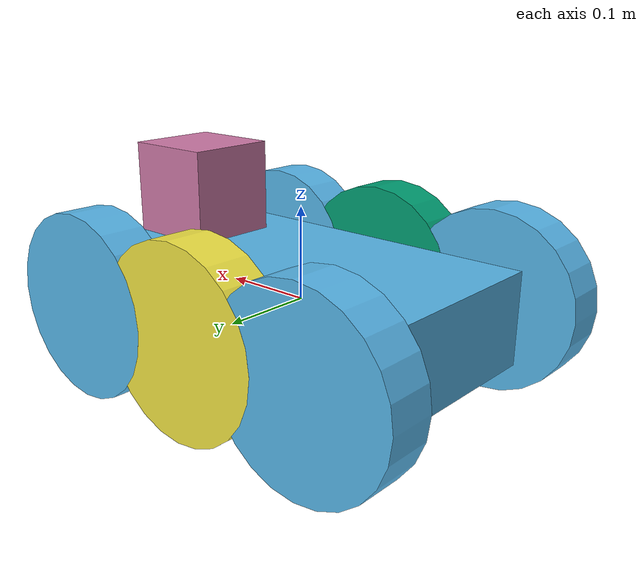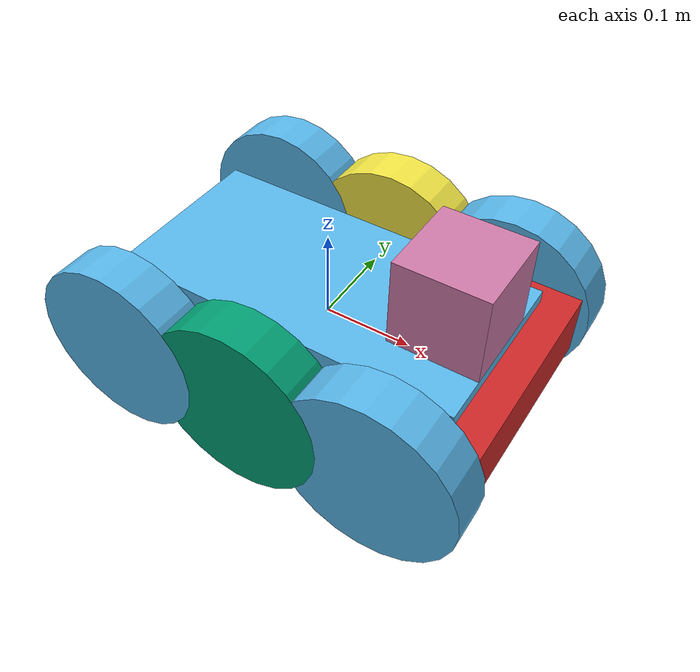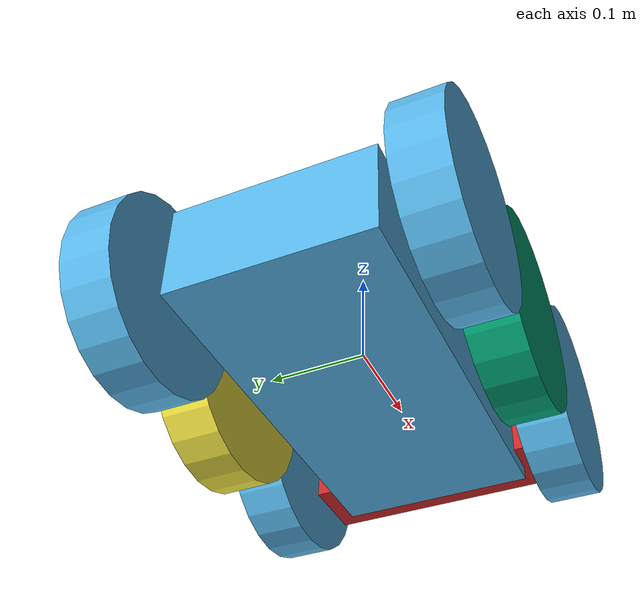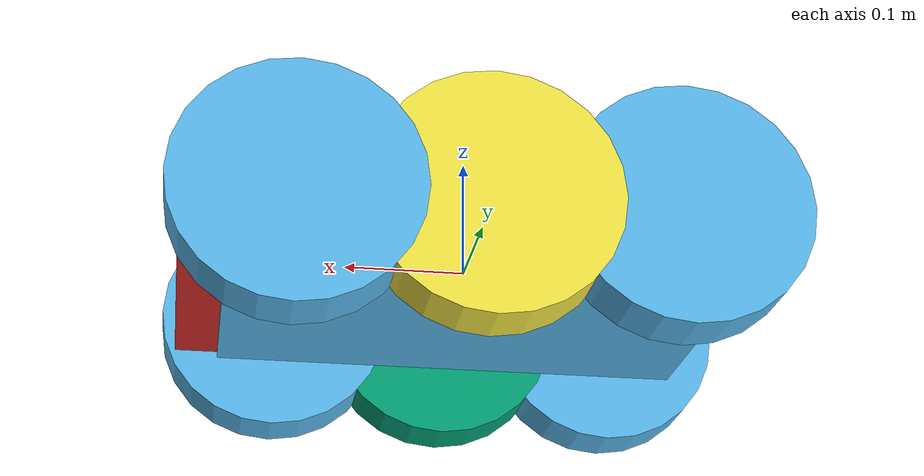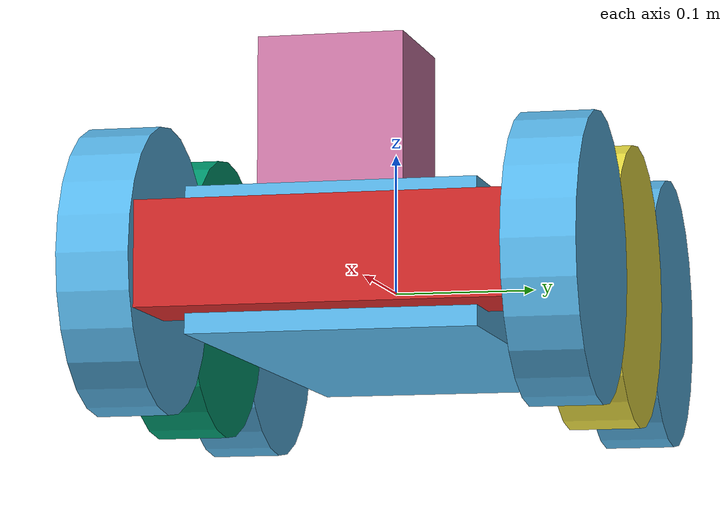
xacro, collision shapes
<?xml version='1.0'?>

<robot name="my_bot" xmlns:xacro="http://www.ros.org/wiki/xacro">
<xacro:include filename="$(find slam_project)/urdf/my_bot.gazebo" />

  <link name="robot_footprint"></link>

  <joint name="robot_footprint_joint" type="fixed">
    <origin xyz="0 0 0" rpy="0 0 0" />
    <parent link="robot_footprint"/>
    <child link="chassis" />
  </joint>

  <link name='chassis'>
    <pose>0 0 0.1 0 0 0</pose>

    <inertial>
      <mass value="5.0"/>
      <origin xyz="0.0 0 0" rpy=" 0 0 0"/>
      <inertia
          ixx="0.1" ixy="0" ixz="0"
          iyy="0.1" iyz="0"
          izz="0.1"
      />
    </inertial>

    <collision name='collision'>
      <origin xyz="0 0 0" rpy=" 0 0 0"/>
      <geometry>
        <box size=".4 .2 .1"/>
      </geometry>
    </collision>

    <visual name='chassis_visual'>
      <origin xyz="0 0 0" rpy=" 0 0 0"/>
      <geometry>
        <box size=".4 .2 .1"/>
      </geometry>
    </visual>

    <visual name='front_bumper'>
        <origin xyz="0.2 0 -0.03" rpy=" 0 0 0"/>
        <geometry>
            <cylinder length="0.03" radius="0.075"/>
        </geometry>
    </visual>

    <visual name='rear_bumper'>
        <origin xyz="-0.2 0 0.03" rpy=" 0 0 0"/>
        <geometry>
            <cylinder length="0.03" radius="0.1"/>
        </geometry>
    </visual>
    <!-- Front Wheels -->

       <visual name='front_right_wheel_visual'>
         <origin xyz="0.15 0.15 0" rpy=" 0 1.5707 1.5707"/>
         <geometry>
           <cylinder length="0.05" radius="0.1"/>
         </geometry>
       </visual>

       <visual name='front_left_wheel_visual'>
       <origin xyz="0.15 -0.15 0" rpy=" 0 1.5707 1.5707"/>
       <geometry>
       <cylinder length="0.05" radius="0.1"/>
       </geometry>
       </visual>

                     <collision name='front_right_wheel_collision'>
                       <origin xyz="0.15 0.15 0" rpy=" 0 1.5707 1.5707"/>
                       <geometry>
                         <cylinder length="0.05" radius="0.099"/>
                       </geometry>
                     </collision>

              <collision name='front_left_wheel_collision'>
                <origin xyz="0.15 -0.15 0" rpy=" 0 1.5707 1.5707"/>
                <geometry>
                  <cylinder length="0.05" radius="0.099"/>
                </geometry>
              </collision>

    <!-- Rear Wheels -->

     <visual name='rear_right_wheel_visual'>
       <origin xyz="-0.15 0.15 0" rpy=" 0 1.5707 1.5707"/>
       <geometry>
         <cylinder length="0.05" radius="0.1"/>
       </geometry>
     </visual>

     <visual name='rear_left_wheel_visual'>
       <origin xyz="-0.15 -0.15 0" rpy=" 0 1.5707 1.5707"/>
       <geometry>
         <cylinder length="0.05" radius="0.1"/>
       </geometry>
     </visual>

          <collision name='rear_right_wheel_collision'>
            <origin xyz="-0.15 0.15 0" rpy=" 0 1.5707 1.5707"/>
            <geometry>
              <cylinder length="0.05" radius="0.099"/>
            </geometry>
          </collision>

          <collision name='rear_left_wheel_collision'>
            <origin xyz="-0.15 -0.15 0" rpy=" 0 1.5707 1.5707"/>
            <geometry>
              <cylinder length="0.05" radius="0.099"/>
            </geometry>
          </collision>

  </link>
  <!-- Wheels -->

   <link name='right_wheel'>
     <inertial>
       <mass value="5.0"/>
       <origin xyz="0.0 0 0" rpy=" 0 1.5707 1.5707"/>
       <inertia
           ixx="0.1" ixy="0" ixz="0"
           iyy="0.1" iyz="0"
           izz="0.1"
       />
     </inertial>

     <collision name='right_wheel_collision'>
       <origin xyz="0 0 0" rpy=" 0 1.5707 1.5707"/>
       <geometry>
         <cylinder length="0.05" radius="0.1"/>
       </geometry>
     </collision>

   </link>

   <link name='left_wheel'>
     <inertial>
       <mass value="5.0"/>
       <origin xyz="0.0 0 0" rpy=" 0 1.5707 1.5707"/>
       <inertia
           ixx="0.1" ixy="0" ixz="0"
           iyy="0.1" iyz="0"
           izz="0.1"
       />
     </inertial>

     <collision name='left_wheel_collision'>
       <origin xyz="0 0 0" rpy=" 0 1.5707 1.5707"/>
       <geometry>
         <cylinder length="0.05" radius="0.1"/>
       </geometry>
     </collision>

   </link>

   <joint type="continuous" name="right_wheel_hinge">
     <origin xyz="0 -0.15 0" rpy="0 0 0"/>
     <child link="right_wheel"/>
     <parent link="chassis"/>
     <axis xyz="0 1 0" rpy="0 0 0"/>
     <limit effort="10000" velocity="1000"/>
     <dynamics damping="1.0" friction="1.0"/>
   </joint>

   <joint type="continuous" name="left_wheel_hinge">
     <origin xyz="0 0.15 0" rpy="0 0 0"/>
     <child link="left_wheel"/>
     <parent link="chassis"/>
     <axis xyz="0 1 0" rpy="0 0 0"/>
     <limit effort="10000" velocity="1000"/>
     <dynamics damping="1.0" friction="1.0"/>
   </joint>

<!-- Camera link -->

  <link name='camera'>
        <inertial>
            <mass value="0.1"/>
            <origin xyz="0.0 0 0" rpy=" 0 0 0"/>
            <inertia ixx="1e-6" ixy="0" ixz="0" iyy="1e-6" iyz="0" izz="1e-6"/>
        </inertial>

        <collision name='collision'>
            <origin xyz="0.0 0 0" rpy=" 0 0 0"/>
            <geometry>
                <box size="0.073000 0.276000 0.07200"/>
            </geometry>
        </collision>

        <visual name='camera_visual'>
            <origin xyz="0.0 0 0" rpy=" 0 0 0"/>
            <geometry>
                <mesh filename="package://slam_project/meshes/kinect.dae"/>
            </geometry>
        </visual>
    </link>

<!-- Camera Joint -->

  <joint type="fixed" name="camera_joint">
    <origin xyz="0.2 0 0" rpy="0 0 0"/>
    <child link="camera"/>
    <parent link="chassis"/>
  </joint>

  <!-- RGBD Link & Joint -->

  <link name="camera_rgbd_frame"/>

  <joint type="fixed" name="rgbd_camera_joint">
    <origin xyz="0.2 0 0" rpy="-1.5707 0 -1.5707"/>
    <child link="camera_rgbd_frame"/>
    <parent link="camera"/>
  </joint>

  <!-- laser Sensor -->

  <link name='hokuyo'>
    <inertial>
      <mass value="0.1"/>
      <origin xyz="0.0 0 0" rpy=" 0 0 0"/>
      <inertia
          ixx="1e-6" ixy="0" ixz="0"
          iyy="1e-6" iyz="0"
          izz="1e-6"
      />
    </inertial>

    <visual name='camera_visual'>
      <origin xyz="0 0 0" rpy=" 0 0 0"/>
      <geometry>
        <mesh filename="package://slam_project/meshes/hokuyo.dae"/>
      </geometry>
    </visual>

    <collision name='camera_collision'>
      <origin xyz="0 0 0" rpy=" 0 0 0"/>
      <geometry>
        <box size=".1 .1 .1"/>
      </geometry>
    </collision>

  </link>

  <joint type="fixed" name="hokuyo_joint">
    <origin xyz="0.15 0 0.1" rpy="0 0 0"/>
    <child link="hokuyo"/>
    <parent link="chassis"/>
    <axis xyz="0 1 0" rpy="0 0 0"/>
    <limit effort="10000" velocity="1000"/>
    <joint_properties damping="1.0" friction="1.0"/>
  </joint>

</robot>
